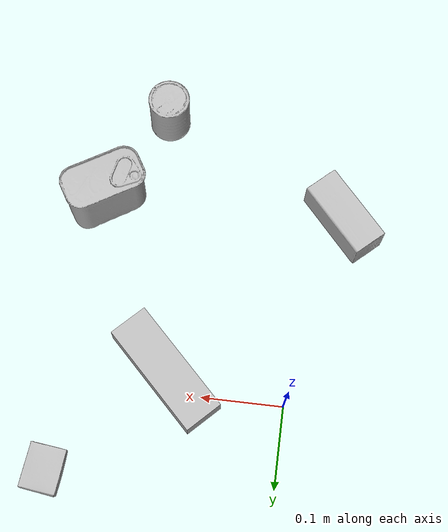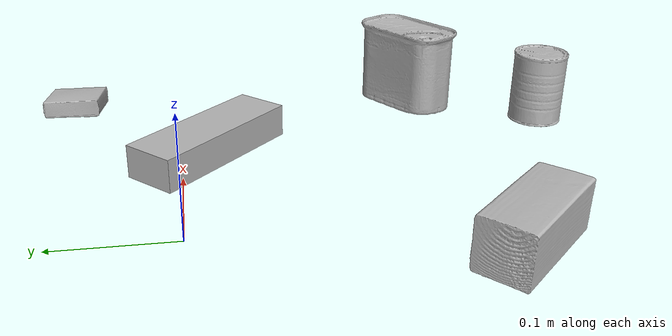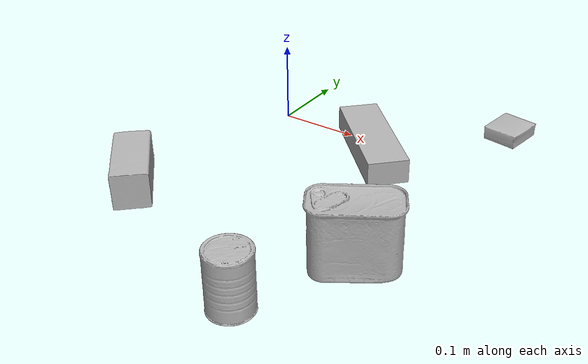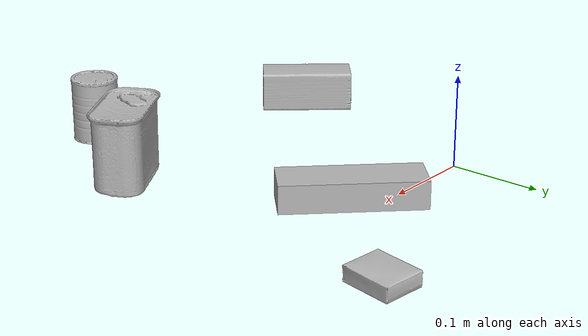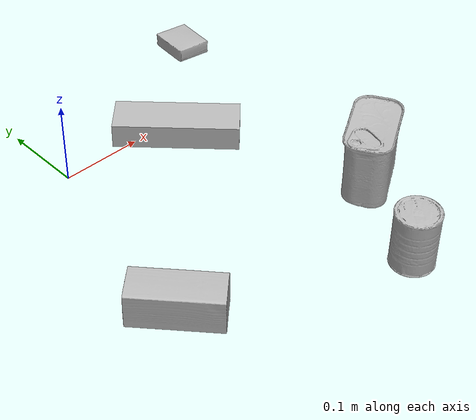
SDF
<sdf version="1.4">
  <world name="default">
    <light name="light1" type="point">
      <pose>0 0 1 0 0 0</pose>
      <diffuse>3 3 3 1</diffuse>
      <specular>3 3 3 1</specular>
    </light>
    <light name="light2" type="point">
      <pose>0 0.5 2 0 0 0</pose>
      <diffuse>1 1 1 1</diffuse>
      <specular>1 1 1 1</specular>
    </light>
    <light name="light3" type="point">
      <pose>0 0.5 2 0 0 0</pose>
      <diffuse>3 3 3 1</diffuse>
      <specular>3 3 3 1</specular>
    </light>
    <scene>
      <ambient>0.7 0.7 0.7</ambient>
    </scene>
    <model name="box1">
      <link name="link_box1">
        <collision name="default">
          <geometry>
            <mesh>
              <uri>model://pudding_box/collision_meshes/collision.obj</uri>
              <scale>0.5 0.5 0.5</scale>
            </mesh>
          </geometry>
          <surface>
            <friction>
              <ode>
                <mu>0.5</mu>
                <mu2>0.5</mu2>
              </ode>
            </friction>
          <contact>
        <ode>
            <max_vel>0</max_vel>
            <min_depth>0.0001</min_depth>
            <kp>1e8</kp>
        </ode>
    </contact></surface>
        </collision>
        <visual name="default">
          <geometry>
            <mesh>
              <uri>model://pudding_box/visual_meshes/visual.dae</uri>
              <scale>0.5 0.5 0.5</scale>
            </mesh>
          </geometry>
        </visual>
        <inertial>
          <mass>0.0642586499452591</mass>
          <pose>0.00024474109522998333 0.00040339428232982755 -0.0002594413817860186 0.005213101302141142 -0.006603800581388343 0.020079827019462423</pose>
          <inertia>
            <ixx>1.8160274e-05</ixx>
            <iyy>1.221836e-05</iyy>
            <izz>2.6818392e-05</izz>
            <ixy>0</ixy>
            <ixz>0</ixz>
            <iyz>0</iyz>
          </inertia>
        </inertial>
      </link>
      <pose>0.2724812626838684 0.10873521119356155 0.00986290443688631 0.022348460624102437 -0.011391822242811812 3.0129277022195646</pose>
    </model>
    <model name="box2">
      <link name="link_box2">
        <collision name="default">
          <geometry>
            <mesh>
              <uri>model://wood_block/collision_meshes/collision.obj</uri>
              <scale>0.5 0.5 0.5</scale>
            </mesh>
          </geometry>
          <surface>
            <friction>
              <ode>
                <mu>0.5</mu>
                <mu2>0.5</mu2>
              </ode>
            </friction>
          <contact>
        <ode>
            <max_vel>0</max_vel>
            <min_depth>0.0001</min_depth>
            <kp>1e8</kp>
        </ode>
    </contact></surface>
        </collision>
        <visual name="default">
          <geometry>
            <mesh>
              <uri>model://wood_block/visual_meshes/visual.dae</uri>
              <scale>0.5 0.5 0.5</scale>
            </mesh>
          </geometry>
        </visual>
        <inertial>
          <mass>0.2432606816291809</mass>
          <pose>-2.9066577553749084e-06 -0.000285404734313488 0.00013204290007706732 -0.0522103103121059 -0.005192696448147362 -0.0068613788455752145</pose>
          <inertia>
            <ixx>8.1379905e-05</ixx>
            <iyy>0.0002570791</iyy>
            <izz>0.00025611752</izz>
            <ixy>0</ixy>
            <ixz>0</ixz>
            <iyz>0</iyz>
          </inertia>
        </inertial>
      </link>
      <pose>-0.04956262186169624 -0.24394023418426514 0.022629262879490852 -0.005208380053166568 0.005718812340891393 2.3051467303022517</pose>
    </model>
    <model name="box3">
      <link name="link_box3">
        <collision name="default">
          <geometry>
            <mesh>
              <uri>model://jenga/collision_meshes/collision.obj</uri>
              <scale>1.0 1.0 1.0</scale>
            </mesh>
          </geometry>
          <surface>
            <friction>
              <ode>
                <mu>0.5</mu>
                <mu2>0.5</mu2>
              </ode>
            </friction>
          <contact>
        <ode>
            <max_vel>0</max_vel>
            <min_depth>0.0001</min_depth>
            <kp>1e8</kp>
        </ode>
    </contact></surface>
        </collision>
        <visual name="default">
          <geometry>
            <mesh>
              <uri>model://jenga/visual_meshes/visual.dae</uri>
              <scale>1.0 1.0 1.0</scale>
            </mesh>
          </geometry>
        </visual>
        <inertial>
          <mass>0.20405839383602142</mass>
          <pose>-2.502855807051674e-07 -0.00010250010382151231 -4.0923401684267446e-05 0.0 -7.342155186052628e-07 0.0</pose>
          <inertia>
            <ixx>5.6467907e-05</ixx>
            <iyy>0.000382625</iyy>
            <izz>0.00040848472</izz>
            <ixy>0</ixy>
            <ixz>0</ixz>
            <iyz>0</iyz>
          </inertia>
        </inertial>
      </link>
      <pose>0.1450740396976471 -0.024710023775696754 0.014999998733401299 -1.6919097554453886e-08 5.873009519358861e-10 2.354636037367141</pose>
    </model>
    <model name="can1">
      <link name="link_can1">
        <collision name="default">
          <geometry>
            <mesh>
              <uri>model://potted_meat_can/collision_meshes/collision.obj</uri>
              <scale>1.0 1.0 1.0</scale>
            </mesh>
          </geometry>
          <surface>
            <friction>
              <ode>
                <mu>0.5</mu>
                <mu2>0.5</mu2>
              </ode>
            </friction>
          <contact>
        <ode>
            <max_vel>0</max_vel>
            <min_depth>0.0001</min_depth>
            <kp>1e8</kp>
        </ode>
    </contact></surface>
        </collision>
        <visual name="default">
          <geometry>
            <mesh>
              <uri>model://potted_meat_can/visual_meshes/visual.dae</uri>
              <scale>1.0 1.0 1.0</scale>
            </mesh>
          </geometry>
        </visual>
        <inertial>
          <mass>0.4665880799293518</mass>
          <pose>0.0002288814284838736 -5.989112105453387e-05 -0.0006367449532262981 -0.028093382538733707 -0.007232605550223235 0.01540626728411476</pose>
          <inertia>
            <ixx>0.0006002166</ixx>
            <iyy>0.0003646772</iyy>
            <izz>0.00043654343</izz>
            <ixy>0</ixy>
            <ixz>0</ixz>
            <iyz>0</iyz>
          </inertia>
        </inertial>
      </link>
      <pose>0.24795158207416534 -0.23652887344360352 0.04212801158428192 -1.004185282949166e-08 -5.135116103098421e-07 -1.0375643730021435</pose>
    </model>
    <model name="can2">
      <link name="link_can2">
        <collision name="default">
          <geometry>
            <mesh>
              <uri>model://master_chef_can/collision_meshes/collision.obj</uri>
              <scale>0.5 0.5 0.5</scale>
            </mesh>
          </geometry>
          <surface>
            <friction>
              <ode>
                <mu>0.5</mu>
                <mu2>0.5</mu2>
              </ode>
            </friction>
          <contact>
        <ode>
            <max_vel>0</max_vel>
            <min_depth>0.0001</min_depth>
            <kp>1e8</kp>
        </ode>
    </contact></surface>
        </collision>
        <visual name="default">
          <geometry>
            <mesh>
              <uri>model://master_chef_can/visual_meshes/visual.dae</uri>
              <scale>0.5 0.5 0.5</scale>
            </mesh>
          </geometry>
        </visual>
        <inertial>
          <mass>0.1648906171321869</mass>
          <pose>-4.661964703700505e-05 1.3926853625889635e-07 -5.079993206891231e-05 -0.0017995099244119924 0.0006479308957776391 -0.6102586503741109</pose>
          <inertia>
            <ixx>9.677961e-05</ixx>
            <iyy>9.606731e-05</iyy>
            <izz>5.3478136e-05</izz>
            <ixy>0</ixy>
            <ixz>0</ixz>
            <iyz>0</iyz>
          </inertia>
        </inertial>
      </link>
      <pose>0.1831921488046646 -0.3543519973754883 0.03530197963118553 -1.2021661461491423e-06 -1.272095391234582e-06 1.3202963029353583</pose>
    </model>
  <physics type="ode">
      <max_contacts>50</max_contacts>
      <ode>
        <solver>
          <type>quick</type>
          <iters>75</iters>
        </solver>
        <constraints>
          <contact_max_correcting_vel>0</contact_max_correcting_vel>
          <contact_surface_layer>0</contact_surface_layer>
        </constraints>
      </ode>
    </physics></world>
</sdf>
